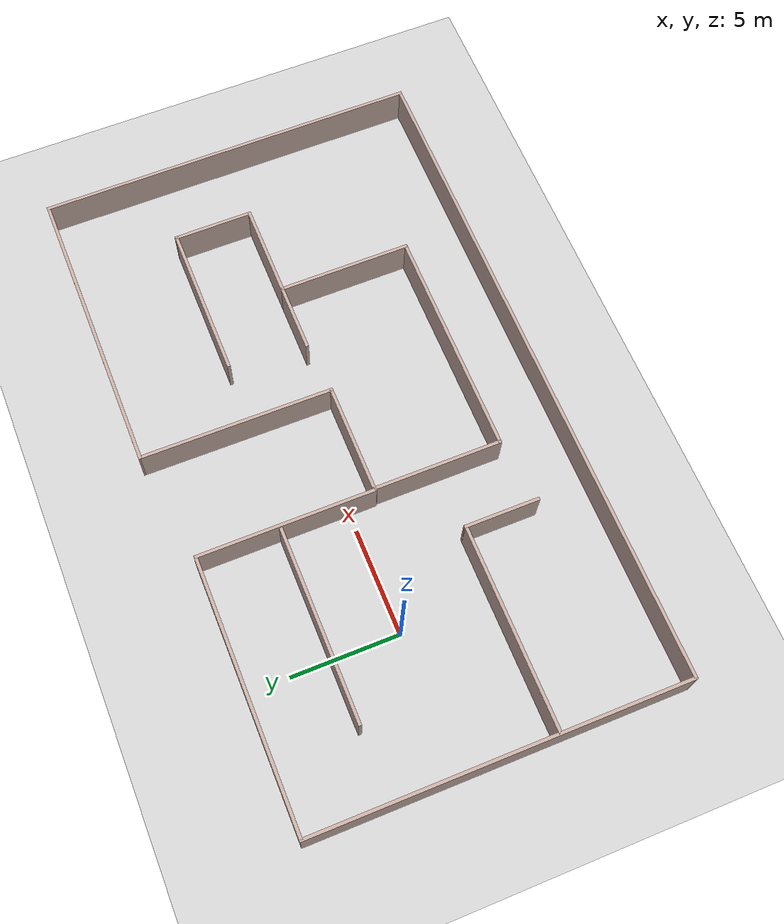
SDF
<sdf version="1.7">
 <world name="default">
  <plugin name="xbot2_clock" filename="libxbot2_gz_clock.so"/>
  <gravity>0 0 -9.81</gravity>
  <model name="ground_plane">
   <static>1</static>
   <link name="link">
    <collision name="collision">
     <geometry><plane><normal>0 0 1</normal><size>100 100</size></plane></geometry>
     <surface><friction><ode><mu>1</mu><mu2>1</mu2></ode></friction></surface>
    </collision>
    <visual name="visual">
     <cast_shadows>0</cast_shadows>
     <geometry><plane><normal>0 0 1</normal><size>100 100</size></plane></geometry>
     <material>
      <script><uri>file://media/materials/scripts/gazebo.material</uri><name>Gazebo/Grey</name></script>
     </material>
    </visual>
   </link>
  </model>
  <light name="sun" type="directional">
   <pose>0 0 10 0 -0 0</pose>
   <diffuse>0.8 0.8 0.8 1</diffuse>
   <specular>0.2 0.2 0.2 1</specular>
   <attenuation>
    <range>1000</range>
    <constant>0.9</constant>
    <linear>0.01</linear>
    <quadratic>0.001</quadratic>
   </attenuation>
   <direction>-0.5 0.1 -0.9</direction>
   <spot><inner_angle>0</inner_angle><outer_angle>0</outer_angle><falloff>0</falloff></spot>
  </light>
  <physics name="update_rate" type="ode">
   <real_time_update_rate>1000</real_time_update_rate>
   <max_step_size>0.001</max_step_size>
   <max_contacts>5</max_contacts>
   <bullet>
    <solver><iters>100</iters><sor>1.55</sor><type>sequential_impulse</type></solver>
    <constraints>
     <contact_surface_layer>0.2</contact_surface_layer>
     <cfm>0.005</cfm>
     <erp>0.2</erp>
     <split_impulse>1</split_impulse>
     <split_impulse_penetration_threshold>-0.01</split_impulse_penetration_threshold>
    </constraints>
   </bullet>
   <ode>
    <solver>
     <iters>50</iters>
     <sor>1.2</sor>
     <type>quick</type>
     <use_dynamic_moi_rescaling>0</use_dynamic_moi_rescaling>
    </solver>
    <constraints>
     <contact_surface_layer>0.0002</contact_surface_layer>
     <contact_max_correcting_vel>500</contact_max_correcting_vel>
     <cfm>1e-06</cfm>
     <erp>0.3</erp>
    </constraints>
   </ode>
   <real_time_factor>1</real_time_factor>
  </physics>
  <model name="Floor1">
   <pose>9.0591 -1.24256 -0.666385 0 -0 0</pose>
   <link name="Wall_15">
    <collision name="Wall_15_Collision">
     <geometry><box><size>5.25 0.15 2.5</size></box></geometry>
     <pose>0 0 1.25 0 -0 0</pose>
    </collision>
    <visual name="Wall_15_Visual">
     <pose>0 0 1.25 0 -0 0</pose>
     <geometry><box><size>5.25 0.15 2.5</size></box></geometry>
     <material>
      <script><uri>file://media/materials/scripts/gazebo.material</uri><name>Gazebo/Grey</name></script>
      <ambient>0.760784 0.662745 0.627451 1</ambient>
     </material>
     <meta><layer>0</layer></meta>
    </visual>
    <pose>-0.649999 0.05479 0 0 -0 0</pose>
   </link>
   <link name="Wall_16">
    <collision name="Wall_16_Collision">
     <geometry><box><size>9.02014 0.15 2.5</size></box></geometry>
     <pose>0 0 1.25 0 -0 0</pose>
    </collision>
    <visual name="Wall_16_Visual">
     <pose>0 0 1.25 0 -0 0</pose>
     <geometry><box><size>9.02014 0.15 2.5</size></box></geometry>
     <material>
      <script><uri>file://media/materials/scripts/gazebo.material</uri><name>Gazebo/Grey</name></script>
      <ambient>0.760784 0.662745 0.627451 1</ambient>
     </material>
     <meta><layer>0</layer></meta>
    </visual>
    <pose>1.925 4.48979 0 0 -0 1.56516</pose>
   </link>
   <link name="Wall_17">
    <collision name="Wall_17_Collision">
     <geometry><box><size>13.75 0.15 2.5</size></box></geometry>
     <pose>0 0 1.25 0 -0 0</pose>
    </collision>
    <visual name="Wall_17_Visual">
     <pose>0 0 1.25 0 -0 0</pose>
     <geometry><box><size>13.75 0.15 2.5</size></box></geometry>
     <material>
      <script><uri>file://media/materials/scripts/gazebo.material</uri><name>Gazebo/Grey</name></script>
      <ambient>0.760784 0.662745 0.627451 1</ambient>
     </material>
     <meta><layer>0</layer></meta>
    </visual>
    <pose>8.75 8.92479 0 0 -0 0</pose>
   </link>
   <link name="Wall_18">
    <collision name="Wall_18_Collision">
     <geometry><box><size>18 0.15 2.5</size></box></geometry>
     <pose>0 0 1.25 0 -0 0</pose>
    </collision>
    <visual name="Wall_18_Visual">
     <pose>0 0 1.25 0 -0 0</pose>
     <geometry><box><size>18 0.15 2.5</size></box></geometry>
     <material>
      <script><uri>file://media/materials/scripts/gazebo.material</uri><name>Gazebo/Grey</name></script>
      <ambient>0.760784 0.662745 0.627451 1</ambient>
     </material>
     <meta><layer>0</layer></meta>
    </visual>
    <pose>15.55 -0.00021 0 0 -0 -1.5708</pose>
   </link>
   <link name="Wall_19">
    <collision name="Wall_19_Collision">
     <geometry><box><size>31.25 0.15 2.5</size></box></geometry>
     <pose>0 0 1.25 0 -0 0</pose>
    </collision>
    <visual name="Wall_19_Visual">
     <pose>0 0 1.25 0 -0 0</pose>
     <geometry><box><size>31.25 0.15 2.5</size></box></geometry>
     <material>
      <script><uri>file://media/materials/scripts/gazebo.material</uri><name>Gazebo/Grey</name></script>
      <ambient>0.760784 0.662745 0.627451 1</ambient>
     </material>
     <meta><layer>0</layer></meta>
    </visual>
    <pose>0 -8.92521 0 0 -0 3.14159</pose>
   </link>
   <link name="Wall_20">
    <collision name="Wall_20_Collision">
     <geometry><box><size>17.25 0.15 2.5</size></box></geometry>
     <pose>0 0 1.25 0 -0 0</pose>
    </collision>
    <visual name="Wall_20_Visual">
     <pose>0 0 1.25 0 -0 0</pose>
     <geometry><box><size>17.25 0.15 2.5</size></box></geometry>
     <material>
      <script><uri>file://media/materials/scripts/gazebo.material</uri><name>Gazebo/Grey</name></script>
      <ambient>0.760784 0.662745 0.627451 1</ambient>
     </material>
     <meta><layer>0</layer></meta>
    </visual>
    <pose>-15.55 -0.37521 0 0 -0 1.5708</pose>
   </link>
   <link name="Wall_22">
    <collision name="Wall_22_Collision">
     <geometry><box><size>12.5 0.15 2.5</size></box></geometry>
     <pose>0 0 1.25 0 -0 0</pose>
    </collision>
    <visual name="Wall_22_Visual">
     <pose>0 0 1.25 0 -0 0</pose>
     <geometry><box><size>12.5 0.15 2.5</size></box></geometry>
     <material>
      <script><uri>file://media/materials/scripts/gazebo.material</uri><name>Gazebo/Grey</name></script>
      <ambient>0.760784 0.662745 0.627451 1</ambient>
     </material>
     <meta><layer>0</layer></meta>
    </visual>
    <pose>-9.375 8.17479 0 0 -0 0</pose>
   </link>
   <link name="Wall_23">
    <collision name="Wall_23_Collision">
     <geometry><box><size>8.25 0.15 2.5</size></box></geometry>
     <pose>0 0 1.25 0 -0 0</pose>
    </collision>
    <visual name="Wall_23_Visual">
     <pose>0 0 1.25 0 -0 0</pose>
     <geometry><box><size>8.25 0.15 2.5</size></box></geometry>
     <material>
      <script><uri>file://media/materials/scripts/gazebo.material</uri><name>Gazebo/Grey</name></script>
      <ambient>0.760784 0.662745 0.627451 1</ambient>
     </material>
     <meta><layer>0</layer></meta>
    </visual>
    <pose>-3.2 4.12479 0 0 -0 -1.5708</pose>
   </link>
   <link name="Wall_25">
    <collision name="Wall_25_Collision">
     <geometry><box><size>9.5 0.15 2.5</size></box></geometry>
     <pose>0 0 1.25 0 -0 0</pose>
    </collision>
    <visual name="Wall_25_Visual">
     <pose>0 0 1.25 0 -0 0</pose>
     <geometry><box><size>9.5 0.15 2.5</size></box></geometry>
     <material>
      <script><uri>file://media/materials/scripts/gazebo.material</uri><name>Gazebo/Grey</name></script>
      <ambient>0.760784 0.662745 0.627451 1</ambient>
     </material>
     <meta><layer>0</layer></meta>
    </visual>
    <pose>-10.8367 -2.89597 0 0 -0 0</pose>
   </link>
   <link name="Wall_26">
    <collision name="Wall_26_Collision">
     <geometry><box><size>3.5 0.15 2.5</size></box></geometry>
     <pose>0 0 1.25 0 -0 0</pose>
    </collision>
    <visual name="Wall_26_Visual">
     <pose>0 0 1.25 0 -0 0</pose>
     <geometry><box><size>3.5 0.15 2.5</size></box></geometry>
     <material>
      <script><uri>file://media/materials/scripts/gazebo.material</uri><name>Gazebo/Grey</name></script>
      <ambient>0.760784 0.662745 0.627451 1</ambient>
     </material>
     <meta><layer>0</layer></meta>
    </visual>
    <pose>-6.16168 -4.57097 0 0 -0 -1.5708</pose>
   </link>
   <link name="Wall_28">
    <collision name="Wall_28_Collision">
     <geometry><box><size>6 0.15 2.5</size></box></geometry>
     <pose>0 0 1.25 0 -0 0</pose>
    </collision>
    <visual name="Wall_28_Visual">
     <pose>0 0 1.25 0 -0 0</pose>
     <geometry><box><size>6 0.15 2.5</size></box></geometry>
     <material>
      <script><uri>file://media/materials/scripts/gazebo.material</uri><name>Gazebo/Grey</name></script>
      <ambient>0.760784 0.662745 0.627451 1</ambient>
     </material>
     <meta><layer>0</layer></meta>
    </visual>
    <pose>-3.13227 -2.90817 0 0 -0 -1.5708</pose>
   </link>
   <link name="Wall_3">
    <collision name="Wall_3_Collision">
     <geometry><box><size>9 0.15 2.5</size></box></geometry>
     <pose>0 0 1.25 0 -0 0</pose>
    </collision>
    <visual name="Wall_3_Visual">
     <pose>0 0 1.25 0 -0 0</pose>
     <geometry><box><size>9 0.15 2.5</size></box></geometry>
     <material>
      <script><uri>file://media/materials/scripts/gazebo.material</uri><name>Gazebo/Grey</name></script>
      <ambient>0.760784 0.662745 0.627451 1</ambient>
     </material>
     <meta><layer>0</layer></meta>
    </visual>
    <pose>-7.81286 4.4044 0 0 -0 3.14159</pose>
   </link>
   <link name="Wall_30">
    <collision name="Wall_30_Collision">
     <geometry><box><size>10.75 0.15 2.5</size></box></geometry>
     <pose>0 0 1.25 0 -0 0</pose>
    </collision>
    <visual name="Wall_30_Visual">
     <pose>0 0 1.25 0 -0 0</pose>
     <geometry><box><size>10.75 0.15 2.5</size></box></geometry>
     <material>
      <script><uri>file://media/materials/scripts/gazebo.material</uri><name>Gazebo/Grey</name></script>
      <ambient>0.760784 0.662745 0.627451 1</ambient>
     </material>
     <meta><layer>0</layer></meta>
    </visual>
    <pose>2.16773 -5.83317 0 0 -0 0</pose>
   </link>
   <link name="Wall_31">
    <collision name="Wall_31_Collision">
     <geometry><box><size>6.25 0.15 2.5</size></box></geometry>
     <pose>0 0 1.25 0 -0 0</pose>
    </collision>
    <visual name="Wall_31_Visual">
     <pose>0 0 1.25 0 -0 0</pose>
     <geometry><box><size>6.25 0.15 2.5</size></box></geometry>
     <material>
      <script><uri>file://media/materials/scripts/gazebo.material</uri><name>Gazebo/Grey</name></script>
      <ambient>0.760784 0.662745 0.627451 1</ambient>
     </material>
     <meta><layer>0</layer></meta>
    </visual>
    <pose>7.46773 -2.78317 0 0 -0 1.5708</pose>
   </link>
   <link name="Wall_32">
    <collision name="Wall_32_Collision">
     <geometry><box><size>3.25 0.15 2.5</size></box></geometry>
     <pose>0 0 1.25 0 -0 0</pose>
    </collision>
    <visual name="Wall_32_Visual">
     <pose>0 0 1.25 0 -0 0</pose>
     <geometry><box><size>3.25 0.15 2.5</size></box></geometry>
     <material>
      <script><uri>file://media/materials/scripts/gazebo.material</uri><name>Gazebo/Grey</name></script>
      <ambient>0.760784 0.662745 0.627451 1</ambient>
     </material>
     <meta><layer>0</layer></meta>
    </visual>
    <pose>5.91773 0.266833 0 0 -0 3.14159</pose>
   </link>
   <link name="Wall_34">
    <collision name="Wall_34_Collision">
     <geometry><box><size>4.5 0.15 2.5</size></box></geometry>
     <pose>0 0 1.25 0 -0 0</pose>
    </collision>
    <visual name="Wall_34_Visual">
     <pose>0 0 1.25 0 -0 0</pose>
     <geometry><box><size>4.5 0.15 2.5</size></box></geometry>
     <material>
      <script><uri>file://media/materials/scripts/gazebo.material</uri><name>Gazebo/Grey</name></script>
      <ambient>0.760784 0.662745 0.627451 1</ambient>
     </material>
     <meta><layer>0</layer></meta>
    </visual>
    <pose>9.64273 0.266833 0 0 -0 0</pose>
   </link>
   <link name="Wall_35">
    <collision name="Wall_35_Collision">
     <geometry><box><size>3.75 0.15 2.5</size></box></geometry>
     <pose>0 0 1.25 0 -0 0</pose>
    </collision>
    <visual name="Wall_35_Visual">
     <pose>0 0 1.25 0 -0 0</pose>
     <geometry><box><size>3.75 0.15 2.5</size></box></geometry>
     <material>
      <script><uri>file://media/materials/scripts/gazebo.material</uri><name>Gazebo/Grey</name></script>
      <ambient>0.760784 0.662745 0.627451 1</ambient>
     </material>
     <meta><layer>0</layer></meta>
    </visual>
    <pose>11.8177 2.06683 0 0 -0 1.5708</pose>
   </link>
   <link name="Wall_36">
    <collision name="Wall_36_Collision">
     <geometry><box><size>7.25 0.15 2.5</size></box></geometry>
     <pose>0 0 1.25 0 -0 0</pose>
    </collision>
    <visual name="Wall_36_Visual">
     <pose>0 0 1.25 0 -0 0</pose>
     <geometry><box><size>7.25 0.15 2.5</size></box></geometry>
     <material>
      <script><uri>file://media/materials/scripts/gazebo.material</uri><name>Gazebo/Grey</name></script>
      <ambient>0.760784 0.662745 0.627451 1</ambient>
     </material>
     <meta><layer>0</layer></meta>
    </visual>
    <pose>8.26773 3.86683 0 0 -0 3.14159</pose>
   </link>
   <static>1</static>
  </model>
  <magnetic_field>6e-06 2.3e-05 -4.2e-05</magnetic_field>
  <atmosphere type="adiabatic"/>
  <scene><ambient>0.4 0.4 0.4 1</ambient><background>0.7 0.7 0.7 1</background><shadows>1</shadows></scene>
  <spherical_coordinates>
   <surface_model>EARTH_WGS84</surface_model>
   <latitude_deg>0</latitude_deg>
   <longitude_deg>0</longitude_deg>
   <elevation>0</elevation>
   <heading_deg>0</heading_deg>
  </spherical_coordinates>
 </world>
</sdf>
